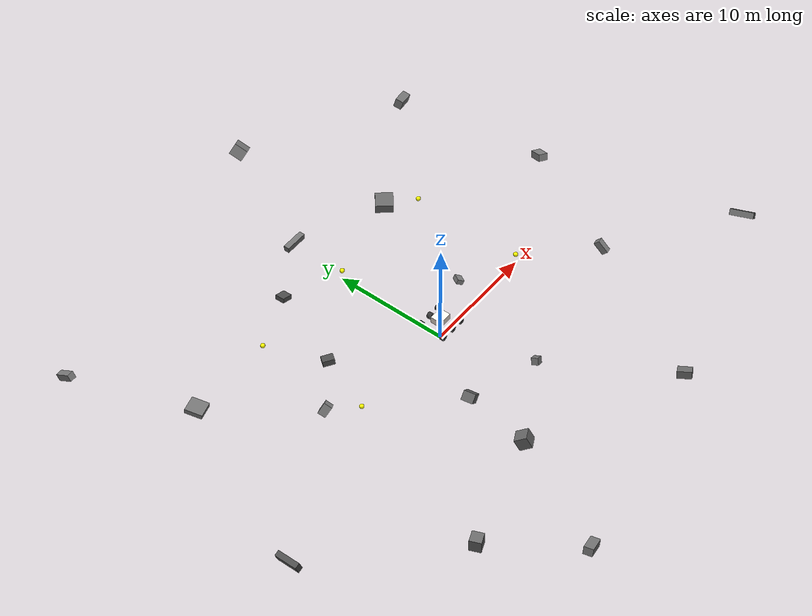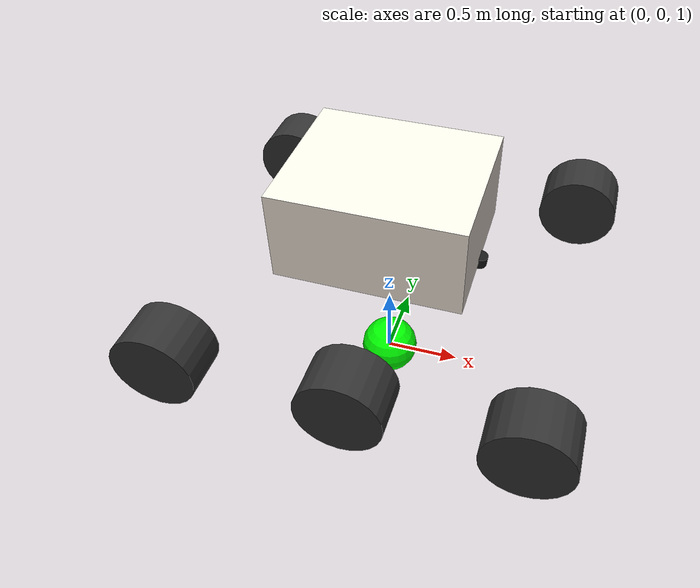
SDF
<sdf version="1.9">
 <world name="mars">
  <physics name="1ms" type="dart">
   <max_step_size>0.001</max_step_size>
   <real_time_factor>1.0</real_time_factor>
  </physics>
  <plugin filename="gz-sim-physics-system" name="gz::sim::systems::Physics"/>
  <plugin filename="gz-sim-sensors-system" name="gz::sim::systems::Sensors">
   <render_engine>ogre2</render_engine>
  </plugin>
  <plugin filename="gz-sim-user-commands-system" name="gz::sim::systems::UserCommands"/>
  <plugin filename="gz-sim-scene-broadcaster-system" name="gz::sim::systems::SceneBroadcaster"/>
  <scene><grid>true</grid><ambient>0.3 0.3 0.3</ambient><background>0.4 0.4 0.4</background></scene>
  <light name="mars_sun" type="directional">
   <pose>0 0 200 0 0.3 0</pose>
   <diffuse>0.85 0.55 0.35 1</diffuse>
   <specular>0.2 0.15 0.1 1</specular>
   <direction>-0.4 0.1 -0.9</direction>
   <cast_shadows>false</cast_shadows>
  </light>
  <include><uri>model://rover</uri><name>rover</name><pose>0 0 1.5 0 0 0</pose></include>
  <model name="flat_ground">
   <static>true</static>
   <link name="link">
    <collision name="collision">
     <geometry><box><size>200 200 1</size></box></geometry>
     <surface><friction><ode><mu>0.8</mu><mu2>0.8</mu2></ode></friction></surface>
    </collision>
    <visual name="visual">
     <geometry><box><size>200 200 1</size></box></geometry>
     <transparency>1.0</transparency>
    </visual>
   </link>
  </model>
  <model name="wp_0">
   <static>true</static>
   <pose>10 0 1 0 0 0</pose>
   <link name="l">
    <visual name="v">
     <geometry><sphere><radius>0.2</radius></sphere></geometry>
     <material><ambient>1 1 0 1</ambient><diffuse>1 1 0 1</diffuse></material>
    </visual>
   </link>
  </model>
  <model name="wp_1">
   <static>true</static>
   <pose>10 10 1 0 0 0</pose>
   <link name="l">
    <visual name="v">
     <geometry><sphere><radius>0.2</radius></sphere></geometry>
     <material><ambient>1 1 0 1</ambient><diffuse>1 1 0 1</diffuse></material>
    </visual>
   </link>
  </model>
  <model name="wp_2">
   <static>true</static>
   <pose>0 10 1 0 0 0</pose>
   <link name="l">
    <visual name="v">
     <geometry><sphere><radius>0.2</radius></sphere></geometry>
     <material><ambient>1 1 0 1</ambient><diffuse>1 1 0 1</diffuse></material>
    </visual>
   </link>
  </model>
  <model name="wp_3">
   <static>true</static>
   <pose>-10 10 1 0 0 0</pose>
   <link name="l">
    <visual name="v">
     <geometry><sphere><radius>0.2</radius></sphere></geometry>
     <material><ambient>1 1 0 1</ambient><diffuse>1 1 0 1</diffuse></material>
    </visual>
   </link>
  </model>
  <model name="wp_4">
   <static>true</static>
   <pose>-10 0 1 0 0 0</pose>
   <link name="l">
    <visual name="v">
     <geometry><sphere><radius>0.2</radius></sphere></geometry>
     <material><ambient>1 1 0 1</ambient><diffuse>1 1 0 1</diffuse></material>
    </visual>
   </link>
  </model>
  <model name="wp_5">
   <static>true</static>
   <pose>0 0 1 0 0 0</pose>
   <link name="l">
    <visual name="v">
     <geometry><sphere><radius>0.2</radius></sphere></geometry>
     <material><ambient>0 1 0 1</ambient><diffuse>0 1 0 1</diffuse></material>
    </visual>
   </link>
  </model>
  <model name="rock_1">
   <static>true</static>
   <pose>5 2 1.0 0.5 0.2 1.0</pose>
   <link name="link">
    <collision name="collision"><geometry><box><size>0.8 0.6 0.4</size></box></geometry></collision>
    <visual name="visual">
     <geometry><box><size>0.8 0.6 0.4</size></box></geometry>
     <material><ambient>0.4 0.4 0.4 1</ambient><diffuse>0.5 0.5 0.5 1</diffuse></material>
    </visual>
   </link>
  </model>
  <model name="rock_2">
   <static>true</static>
   <pose>-4 -6 0.9 0.1 0.8 0.3</pose>
   <link name="link">
    <collision name="collision"><geometry><box><size>1.2 1.0 0.8</size></box></geometry></collision>
    <visual name="visual">
     <geometry><box><size>1.2 1.0 0.8</size></box></geometry>
     <material><ambient>0.3 0.3 0.3 1</ambient><diffuse>0.4 0.4 0.4 1</diffuse></material>
    </visual>
   </link>
  </model>
  <model name="rock_3">
   <static>true</static>
   <pose>2 -8 1.1 1.2 0.4 0.1</pose>
   <link name="link">
    <collision name="collision"><geometry><box><size>0.6 0.6 0.6</size></box></geometry></collision>
    <visual name="visual">
     <geometry><box><size>0.6 0.6 0.6</size></box></geometry>
     <material><ambient>0.35 0.35 0.35 1</ambient><diffuse>0.45 0.45 0.45 1</diffuse></material>
    </visual>
   </link>
  </model>
  <model name="rock_4">
   <static>true</static>
   <pose>-8 5 1.0 0.2 0.1 2.5</pose>
   <link name="link">
    <collision name="collision"><geometry><box><size>1.0 0.8 0.5</size></box></geometry></collision>
    <visual name="visual">
     <geometry><box><size>1.0 0.8 0.5</size></box></geometry>
     <material><ambient>0.25 0.25 0.25 1</ambient><diffuse>0.3 0.3 0.3 1</diffuse></material>
    </visual>
   </link>
  </model>
  <model name="rock_5">
   <static>true</static>
   <pose>8 12 0.9 0 0 0.7</pose>
   <link name="link">
    <collision name="collision"><geometry><box><size>1.5 1.5 0.8</size></box></geometry></collision>
    <visual name="visual">
     <geometry><box><size>1.5 1.5 0.8</size></box></geometry>
     <material><ambient>0.3 0.3 0.3 1</ambient><diffuse>0.4 0.4 0.4 1</diffuse></material>
    </visual>
   </link>
  </model>
  <model name="rock_6">
   <static>true</static>
   <pose>-12 2 1.1 0.5 0.5 0.5</pose>
   <link name="link">
    <collision name="collision"><geometry><box><size>0.7 0.7 1.0</size></box></geometry></collision>
    <visual name="visual">
     <geometry><box><size>0.7 0.7 1.0</size></box></geometry>
     <material><ambient>0.4 0.4 0.4 1</ambient><diffuse>0.5 0.5 0.5 1</diffuse></material>
    </visual>
   </link>
  </model>
  <model name="rock_7">
   <static>true</static>
   <pose>0 15 1.0 0 0 0</pose>
   <link name="link">
    <collision name="collision"><geometry><box><size>2.0 0.5 0.5</size></box></geometry></collision>
    <visual name="visual">
     <geometry><box><size>2.0 0.5 0.5</size></box></geometry>
     <material><ambient>0.35 0.35 0.35 1</ambient><diffuse>0.45 0.45 0.45 1</diffuse></material>
    </visual>
   </link>
  </model>
  <model name="rock_8">
   <static>true</static>
   <pose>-5 12 0.9 0.2 0.2 1.5</pose>
   <link name="link">
    <collision name="collision"><geometry><box><size>0.9 0.9 0.4</size></box></geometry></collision>
    <visual name="visual">
     <geometry><box><size>0.9 0.9 0.4</size></box></geometry>
     <material><ambient>0.25 0.25 0.25 1</ambient><diffuse>0.3 0.3 0.3 1</diffuse></material>
    </visual>
   </link>
  </model>
  <model name="rock_9">
   <static>true</static>
   <pose>15 -5 1.0 0.8 0.1 0.2</pose>
   <link name="link">
    <collision name="collision"><geometry><box><size>0.5 1.2 0.6</size></box></geometry></collision>
    <visual name="visual">
     <geometry><box><size>0.5 1.2 0.6</size></box></geometry>
     <material><ambient>0.4 0.4 0.4 1</ambient><diffuse>0.5 0.5 0.5 1</diffuse></material>
    </visual>
   </link>
  </model>
  <model name="rock_10">
   <static>true</static>
   <pose>-15 -15 1.2 0 0 0.4</pose>
   <link name="link">
    <collision name="collision"><geometry><box><size>1.0 1.0 1.2</size></box></geometry></collision>
    <visual name="visual">
     <geometry><box><size>1.0 1.0 1.2</size></box></geometry>
     <material><ambient>0.3 0.3 0.3 1</ambient><diffuse>0.4 0.4 0.4 1</diffuse></material>
    </visual>
   </link>
  </model>
  <model name="rock_11">
   <static>true</static>
   <pose>20 5 1.1 0.2 0.4 1.2</pose>
   <link name="link">
    <collision name="collision"><geometry><box><size>1.2 0.8 0.6</size></box></geometry></collision>
    <visual name="visual">
     <geometry><box><size>1.2 0.8 0.6</size></box></geometry>
     <material><ambient>0.4 0.4 0.4 1</ambient><diffuse>0.5 0.5 0.5 1</diffuse></material>
    </visual>
   </link>
  </model>
  <model name="rock_12">
   <static>true</static>
   <pose>-18 10 1.0 0.1 0.1 0.3</pose>
   <link name="link">
    <collision name="collision"><geometry><box><size>1.5 1.5 0.4</size></box></geometry></collision>
    <visual name="visual">
     <geometry><box><size>1.5 1.5 0.4</size></box></geometry>
     <material><ambient>0.35 0.35 0.35 1</ambient><diffuse>0.45 0.45 0.45 1</diffuse></material>
    </visual>
   </link>
  </model>
  <model name="rock_13">
   <static>true</static>
   <pose>8 -18 1.3 1.5 0.2 0.5</pose>
   <link name="link">
    <collision name="collision"><geometry><box><size>0.7 0.7 1.2</size></box></geometry></collision>
    <visual name="visual">
     <geometry><box><size>0.7 0.7 1.2</size></box></geometry>
     <material><ambient>0.3 0.3 0.3 1</ambient><diffuse>0.4 0.4 0.4 1</diffuse></material>
    </visual>
   </link>
  </model>
  <model name="rock_14">
   <static>true</static>
   <pose>-25 -5 1.1 0 1.2 0</pose>
   <link name="link">
    <collision name="collision"><geometry><box><size>1.0 2.0 0.5</size></box></geometry></collision>
    <visual name="visual">
     <geometry><box><size>1.0 2.0 0.5</size></box></geometry>
     <material><ambient>0.25 0.25 0.25 1</ambient><diffuse>0.3 0.3 0.3 1</diffuse></material>
    </visual>
   </link>
  </model>
  <model name="rock_15">
   <static>true</static>
   <pose>5 25 1.2 0.5 0.5 0.5</pose>
   <link name="link">
    <collision name="collision"><geometry><box><size>1.2 1.2 1.0</size></box></geometry></collision>
    <visual name="visual">
     <geometry><box><size>1.2 1.2 1.0</size></box></geometry>
     <material><ambient>0.4 0.4 0.4 1</ambient><diffuse>0.5 0.5 0.5 1</diffuse></material>
    </visual>
   </link>
  </model>
  <model name="rock_16">
   <static>true</static>
   <pose>-10 -22 1.1 0.3 0 1.8</pose>
   <link name="link">
    <collision name="collision"><geometry><box><size>0.8 1.5 0.7</size></box></geometry></collision>
    <visual name="visual">
     <geometry><box><size>0.8 1.5 0.7</size></box></geometry>
     <material><ambient>0.35 0.35 0.35 1</ambient><diffuse>0.45 0.45 0.45 1</diffuse></material>
    </visual>
   </link>
  </model>
  <model name="rock_17">
   <static>true</static>
   <pose>25 -12 1.0 0 0.8 0.4</pose>
   <link name="link">
    <collision name="collision"><geometry><box><size>2.0 2.0 0.5</size></box></geometry></collision>
    <visual name="visual">
     <geometry><box><size>2.0 2.0 0.5</size></box></geometry>
     <material><ambient>0.3 0.3 0.3 1</ambient><diffuse>0.4 0.4 0.4 1</diffuse></material>
    </visual>
   </link>
  </model>
  <model name="rock_18">
   <static>true</static>
   <pose>-22 20 1.3 1.0 0 0</pose>
   <link name="link">
    <collision name="collision"><geometry><box><size>0.6 0.6 1.5</size></box></geometry></collision>
    <visual name="visual">
     <geometry><box><size>0.6 0.6 1.5</size></box></geometry>
     <material><ambient>0.4 0.4 0.4 1</ambient><diffuse>0.5 0.5 0.5 1</diffuse></material>
    </visual>
   </link>
  </model>
  <model name="rock_19">
   <static>true</static>
   <pose>18 18 1.1 0.2 0.2 0.2</pose>
   <link name="link">
    <collision name="collision"><geometry><box><size>1.4 0.7 0.8</size></box></geometry></collision>
    <visual name="visual">
     <geometry><box><size>1.4 0.7 0.8</size></box></geometry>
     <material><ambient>0.35 0.35 0.35 1</ambient><diffuse>0.45 0.45 0.45 1</diffuse></material>
    </visual>
   </link>
  </model>
  <model name="rock_20">
   <static>true</static>
   <pose>-5 -12 1.2 0.1 0.5 2.1</pose>
   <link name="link">
    <collision name="collision"><geometry><box><size>1.1 1.1 1.1</size></box></geometry></collision>
    <visual name="visual">
     <geometry><box><size>1.1 1.1 1.1</size></box></geometry>
     <material><ambient>0.3 0.3 0.3 1</ambient><diffuse>0.4 0.4 0.4 1</diffuse></material>
    </visual>
   </link>
  </model>
 </world>
</sdf>

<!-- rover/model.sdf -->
<sdf version="1.9">
  <model name="rover">
    <link name="base_link">
      <pose>0 0 0.8 0 0 0</pose>
      <inertial>
        <mass>500</mass>
        <inertia>
          <ixx>5</ixx><ixy>0</ixy><ixz>0</ixz>
          <iyy>12</iyy><iyz>0</iyz>
          <izz>10</izz>
        </inertia>
      </inertial>
      <collision name="base_link_collision">
        <geometry>
          <box><size>1.2 1.0 0.6</size></box>
        </geometry>
        <surface>
          <friction>
            <ode><mu>0.5</mu><mu2>1.0</mu2></ode>
          </friction>
        </surface>
      </collision>
      <visual name="base_visual">
        <geometry>
          <box><size>1.2 1.0 0.6</size></box>
        </geometry>
        <material>
          <ambient>0.9 0.85 0.8 1</ambient>
          <diffuse>1 0.95 0.9 1</diffuse>
        </material>
      </visual>
    </link>

    <link name="left_wheel1">
      <pose>1.14 -1.1 0.26 0 0 0</pose>
      <inertial><mass>10</mass><inertia><ixx>0.1</ixx><ixy>0</ixy><ixz>0</ixz><iyy>0.1</iyy><iyz>0</iyz><izz>0.1</izz></inertia></inertial>
      <collision name="left_wheel1_collision">
        <pose>0 0 0 -1.5708 0 0</pose>
        <geometry><cylinder><radius>0.27</radius><length>0.33</length></cylinder></geometry>
        <surface>
          <friction>
            <ode>
              <mu>2.0</mu><mu2>2.0</mu2>
              <slip1>0</slip1><slip2>0</slip2>
              <fdir1>0 0 1</fdir1>
            </ode>
          </friction>
          <contact>
            <ode><kp>1e7</kp><kd>1</kd></ode>
          </contact>
        </surface>
      </collision>
      <visual name="left_wheel1_visual">
        <pose>0 0 0 -1.5708 0 0</pose>
        <geometry><cylinder><radius>0.27</radius><length>0.33</length></cylinder></geometry>
        <material>
          <ambient>0.1 0.1 0.1 1</ambient>
          <diffuse>0.2 0.2 0.2 1</diffuse>
        </material>
      </visual>
    </link>

    <link name="left_wheel2">
      <pose>0.08 -1.1 0.26 0 0 0</pose>
      <inertial><mass>10</mass><inertia><ixx>0.1</ixx><ixy>0</ixy><ixz>0</ixz><iyy>0.1</iyy><iyz>0</iyz><izz>0.1</izz></inertia></inertial>
      <collision name="left_wheel2_collision">
        <pose>0 0 0 -1.5708 0 0</pose>
        <geometry><cylinder><radius>0.27</radius><length>0.33</length></cylinder></geometry>
        <surface>
          <friction>
            <ode>
              <mu>1.5</mu><mu2>2.0</mu2>
              <slip1>0</slip1><slip2>0</slip2>
              <fdir1>0 0 1</fdir1>
            </ode>
          </friction>
          <contact>
            <ode><kp>1e7</kp><kd>1</kd></ode>
          </contact>
        </surface>
      </collision>
      <visual name="left_wheel2_visual">
        <pose>0 0 0 -1.5708 0 0</pose>
        <geometry><cylinder><radius>0.27</radius><length>0.33</length></cylinder></geometry>
        <material>
          <ambient>0.1 0.1 0.1 1</ambient>
          <diffuse>0.2 0.2 0.2 1</diffuse>
        </material>
      </visual>
    </link>

    <link name="left_wheel3">
      <pose>-1.07 -1.1 0.26 0 0 0</pose>
      <inertial><mass>10</mass><inertia><ixx>0.1</ixx><ixy>0</ixy><ixz>0</ixz><iyy>0.1</iyy><iyz>0</iyz><izz>0.1</izz></inertia></inertial>
      <collision name="left_wheel3_collision">
        <pose>0 0 0 -1.5708 0 0</pose>
        <geometry><cylinder><radius>0.27</radius><length>0.33</length></cylinder></geometry>
        <surface>
          <friction>
            <ode>
              <mu>2.0</mu><mu2>2.0</mu2>
              <slip1>0</slip1><slip2>0</slip2>
              <fdir1>0 0 1</fdir1>
            </ode>
          </friction>
          <contact>
            <ode><kp>1e7</kp><kd>1</kd></ode>
          </contact>
        </surface>
      </collision>
      <visual name="left_wheel3_visual">
        <pose>0 0 0 -1.5708 0 0</pose>
        <geometry><cylinder><radius>0.27</radius><length>0.33</length></cylinder></geometry>
        <material>
          <ambient>0.1 0.1 0.1 1</ambient>
          <diffuse>0.2 0.2 0.2 1</diffuse>
        </material>
      </visual>
    </link>

    <link name="right_wheel1">
      <pose>1.14 1.1 0.26 0 0 0</pose>
      <inertial><mass>10</mass><inertia><ixx>0.1</ixx><ixy>0</ixy><ixz>0</ixz><iyy>0.1</iyy><iyz>0</iyz><izz>0.1</izz></inertia></inertial>
      <collision name="right_wheel1_collision">
        <pose>0 0 0 -1.5708 0 0</pose>
        <geometry><cylinder><radius>0.27</radius><length>0.33</length></cylinder></geometry>
        <surface>
          <friction>
            <ode>
              <mu>2.0</mu><mu2>2.0</mu2>
              <slip1>0</slip1><slip2>0</slip2>
              <fdir1>0 0 1</fdir1>
            </ode>
          </friction>
          <contact>
            <ode><kp>1e7</kp><kd>1</kd></ode>
          </contact>
        </surface>
      </collision>
      <visual name="right_wheel1_visual">
        <pose>0 0 0 -1.5708 0 0</pose>
        <geometry><cylinder><radius>0.27</radius><length>0.33</length></cylinder></geometry>
        <material>
          <ambient>0.1 0.1 0.1 1</ambient>
          <diffuse>0.2 0.2 0.2 1</diffuse>
        </material>
      </visual>
    </link>

    <link name="right_wheel2">
      <pose>0.08 1.1 0.26 0 0 0</pose>
      <inertial><mass>10</mass><inertia><ixx>0.1</ixx><ixy>0</ixy><ixz>0</ixz><iyy>0.1</iyy><iyz>0</iyz><izz>0.1</izz></inertia></inertial>
      <collision name="right_wheel2_collision">
        <pose>0 0 0 -1.5708 0 0</pose>
        <geometry><cylinder><radius>0.27</radius><length>0.33</length></cylinder></geometry>
        <surface>
          <friction>
            <ode>
              <mu>1.5</mu><mu2>2.0</mu2>
              <slip1>0</slip1><slip2>0</slip2>
              <fdir1>0 0 1</fdir1>
            </ode>
          </friction>
          <contact>
            <ode><kp>1e7</kp><kd>1</kd></ode>
          </contact>
        </surface>
      </collision>
      <visual name="right_wheel2_visual">
        <pose>0 0 0 -1.5708 0 0</pose>
        <geometry><cylinder><radius>0.27</radius><length>0.33</length></cylinder></geometry>
        <material>
          <ambient>0.1 0.1 0.1 1</ambient>
          <diffuse>0.2 0.2 0.2 1</diffuse>
        </material>
      </visual>
    </link>

    <link name="right_wheel3">
      <pose>-1.07 1.1 0.26 0 0 0</pose>
      <inertial><mass>10</mass><inertia><ixx>0.1</ixx><ixy>0</ixy><ixz>0</ixz><iyy>0.1</iyy><iyz>0</iyz><izz>0.1</izz></inertia></inertial>
      <collision name="right_wheel3_collision">
        <pose>0 0 0 -1.5708 0 0</pose>
        <geometry><cylinder><radius>0.27</radius><length>0.33</length></cylinder></geometry>
        <surface>
          <friction>
            <ode>
              <mu>2.0</mu><mu2>2.0</mu2>
              <slip1>0</slip1><slip2>0</slip2>
              <fdir1>0 0 1</fdir1>
            </ode>
          </friction>
          <contact>
            <ode><kp>1e7</kp><kd>1</kd></ode>
          </contact>
        </surface>
      </collision>
      <visual name="right_wheel3_visual">
        <pose>0 0 0 -1.5708 0 0</pose>
        <geometry><cylinder><radius>0.27</radius><length>0.33</length></cylinder></geometry>
        <material>
          <ambient>0.1 0.1 0.1 1</ambient>
          <diffuse>0.2 0.2 0.2 1</diffuse>
        </material>
      </visual>
    </link>

    <joint name="left_wheel1_j" type="revolute">
      <parent>base_link</parent>
      <child>left_wheel1</child>
      <axis>
        <xyz expressed_in="__model__">0 1 0</xyz>
        <limit><lower>-1e16</lower><upper>1e16</upper></limit>
      </axis>
    </joint>
    <joint name="left_wheel2_j" type="revolute">
      <parent>base_link</parent>
      <child>left_wheel2</child>
      <axis>
        <xyz expressed_in="__model__">0 1 0</xyz>
        <limit><lower>-1e16</lower><upper>1e16</upper></limit>
      </axis>
    </joint>
    <joint name="left_wheel3_j" type="revolute">
      <parent>base_link</parent>
      <child>left_wheel3</child>
      <axis>
        <xyz expressed_in="__model__">0 1 0</xyz>
        <limit><lower>-1e16</lower><upper>1e16</upper></limit>
      </axis>
    </joint>
    <joint name="right_wheel1_j" type="revolute">
      <parent>base_link</parent>
      <child>right_wheel1</child>
      <axis>
        <xyz expressed_in="__model__">0 1 0</xyz>
        <limit><lower>-1e16</lower><upper>1e16</upper></limit>
      </axis>
    </joint>
    <joint name="right_wheel2_j" type="revolute">
      <parent>base_link</parent>
      <child>right_wheel2</child>
      <axis>
        <xyz expressed_in="__model__">0 1 0</xyz>
        <limit><lower>-1e16</lower><upper>1e16</upper></limit>
      </axis>
    </joint>
    <joint name="right_wheel3_j" type="revolute">
      <parent>base_link</parent>
      <child>right_wheel3</child>
      <axis>
        <xyz expressed_in="__model__">0 1 0</xyz>
        <limit><lower>-1e16</lower><upper>1e16</upper></limit>
      </axis>
    </joint>

    <plugin filename="gz-sim-diff-drive-system" name="gz::sim::systems::DiffDrive">
      <left_joint>left_wheel1_j</left_joint>
      <left_joint>left_wheel2_j</left_joint>
      <left_joint>left_wheel3_j</left_joint>
      <right_joint>right_wheel1_j</right_joint>
      <right_joint>right_wheel2_j</right_joint>
      <right_joint>right_wheel3_j</right_joint>
      <wheel_separation>2.2</wheel_separation>
      <wheel_radius>0.27</wheel_radius>
      <topic>/rover/cmd_vel</topic>
      <odom_topic>/rover/odometry</odom_topic>
      <tf_topic>/rover/tf</tf_topic>
      <frame_id>odom</frame_id>
      <child_frame_id>base_link</child_frame_id>
      <odom_publish_frequency>20</odom_publish_frequency>
    </plugin>

    <plugin filename="gz-sim-joint-state-publisher-system" name="gz::sim::systems::JointStatePublisher">
      <topic>/rover/joint_states</topic>
    </plugin>

    <!-- LiDAR sensor link — mounted at front chassis edge -->
    <link name="lidar_link">
      <!--
        Mounted at z=0.5 (front bottom edge) with 5 deg tilt
      -->
      <pose>0.6 0 0.5 0 0.087 0</pose>

      <inertial>
        <mass>0.1</mass>
        <inertia>
          <ixx>0.000041</ixx><ixy>0</ixy><ixz>0</ixz>
          <iyy>0.000041</iyy><iyz>0</iyz>
          <izz>0.000080</izz>
        </inertia>
      </inertial>

      <visual name="lidar_visual">
        <geometry>
          <cylinder><radius>0.05</radius><length>0.07</length></cylinder>
        </geometry>
        <material>
          <ambient>0.1 0.1 0.1 1</ambient>
          <diffuse>0.1 0.1 0.1 1</diffuse>
        </material>
      </visual>

      <collision name="lidar_collision">
        <geometry>
          <cylinder><radius>0.05</radius><length>0.07</length></cylinder>
        </geometry>
      </collision>

      <sensor name="lidar" type="gpu_lidar">
        <topic>/scan</topic>
        <update_rate>10</update_rate>
        <alwaysOn>1</alwaysOn>
        <visualize>true</visualize>
        <gz_frame_id>lidar_link</gz_frame_id>
        <lidar>
          <scan>
            <horizontal>
              <samples>360</samples>
              <resolution>1</resolution>
              <min_angle>-3.14159</min_angle>
              <max_angle>3.14159</max_angle>
            </horizontal>
            <vertical>
              <samples>1</samples>
              <resolution>1</resolution>
              <min_angle>0</min_angle>
              <max_angle>0</max_angle>
            </vertical>
          </scan>
          <range>
            <min>0.15</min>
            <max>12.0</max>
            <resolution>0.01</resolution>
          </range>
          <noise>
            <type>gaussian</type>
            <mean>0.0</mean>
            <stddev>0.015</stddev>
          </noise>
        </lidar>
      </sensor>
    </link>

    <!-- Fixed joint attaching LiDAR to rover chassis -->
    <joint name="lidar_joint" type="fixed">
      <parent>base_link</parent>
      <child>lidar_link</child>
    </joint>
  </model>
</sdf>
